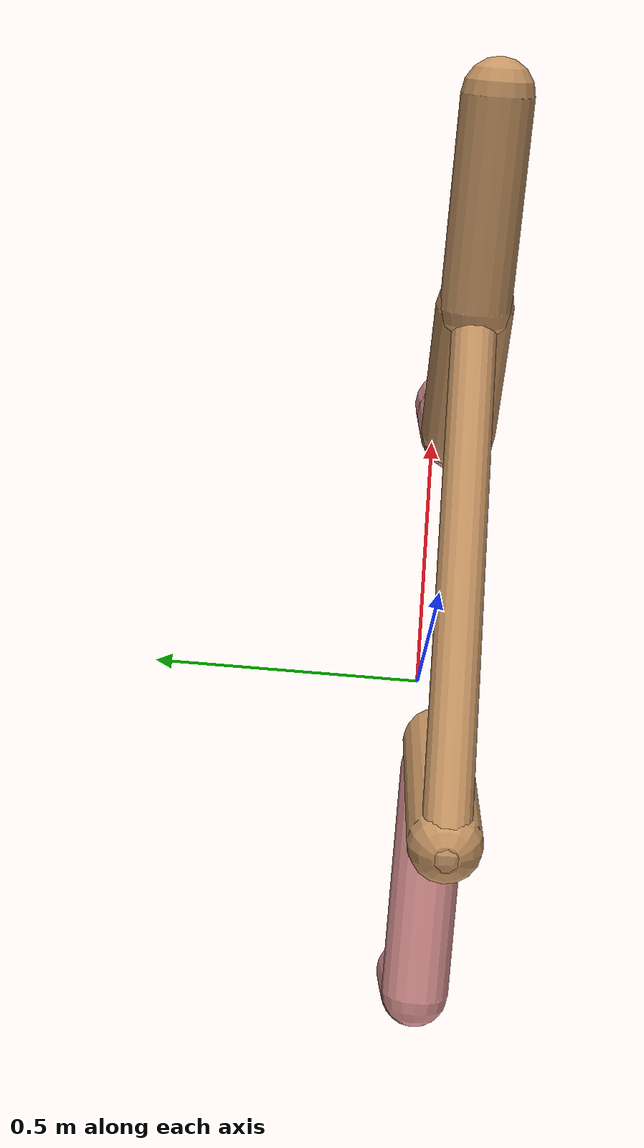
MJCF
<mujoco model="cheetah">
  <compiler angle="radian" coordinate="local" inertiafromgeom="true" settotalmass="14" />
  <default>
    <joint armature=".1" damping=".01" limited="true" solimplimit="0 .8 .03" solreflimit=".02 1" stiffness="8" />
    <geom conaffinity="0" condim="3" contype="1" friction="0.8 .1 .1" rgba="0.8 0.6 .4 1" solimp="0.0 0.8 0.01" solref="0.02 1" />
    <motor ctrllimited="true" ctrlrange="-1 1" />
  </default>
  <size nstack="300000" nuser_geom="1" />
  <option gravity="0 0 -9.81" timestep="0.01" />
  <worldbody>
    <body name="torso" pos="0.0 0.0 0.9064687366000509">
      <joint armature="0" axis="1 0 0" damping="0" limited="false" name="ignorex" pos="0 0 0" stiffness="0" type="slide" />
      <joint armature="0" axis="0 0 1" damping="0" limited="false" name="ignorez" pos="0 0 0" stiffness="0" type="slide" />
      <joint armature="0" axis="0 1 0" damping="0" limited="false" name="ignorey" pos="0 0 0" stiffness="0" type="hinge" />
      <geom fromto="-0.5 0.0 0.0 0.3055506408857629 0.0 0.0" name="torso" size="0.03305851417462829" type="capsule" />
      <geom axisangle="0 1 0 .87" name="head" pos="0.40555064088576287 0.0 0.1" size="0.05204322932873981 0.15" type="capsule" />

      <body name="bthigh" pos="-.5 0 0">
        <joint axis="0 1 0" damping="6" name="bthigh" pos="0 0 0" range="-.52 1.05" stiffness="240" type="hinge" />
        <geom axisangle="0 1 0 -3.8" name="bthigh" pos="0.11546906823745197 0.0 -0.15010978870868755" size="0.05039339350407023 0.1703711583110232" type="capsule" />
        <body name="bshin" pos="0.19093813647490393 0.0 -0.2902195774173751">
          <joint axis="0 1 0" damping="4.5" name="bshin" pos="0 0 0" range="-.785 .785" stiffness="180" type="hinge" />
          <geom axisangle="0 1 0 -2.03" name="bshin" pos="-0.16347515916607863 0.0 -0.08173757958303932" rgba="0.9 0.6 0.6 1" size="0.05039339350407023 0.17624602583898952" type="capsule" />
          <body name="bfoot" pos="-0.32695031833215726 0.0 -0.16347515916607863">
            <joint axis="0 1 0" damping="3" name="bfoot" pos="0 0 0" range="-.4 .785" stiffness="120" type="hinge" />
            <geom axisangle="0 1 0 -.27" name="bfoot" pos="0.034859741082336373 0.0 -0.11271316283288763" rgba="0.9 0.6 0.6 1" size="0.05039339350407023 0.11044750952576678" type="capsule" />
            <inertial mass="10" />
          </body>
        </body>
      </body>
      <body name="fthigh" pos="0.3055506408857629 0.0 0.0">
        <joint axis="0 1 0" damping="4.5" name="fthigh" pos="0 0 0" range="-1.5 0.8" stiffness="180" type="hinge" />
        <geom axisangle="0 1 0 .52" name="fthigh" pos="-0.059451036502971955 0.0 -0.10191606257652334" size="0.057158566802666164 0.11206415935296962" type="capsule" />
        <body name="fshin" pos="-0.11890207300594391 0.0 -0.2038321251530467">
          <joint axis="0 1 0" damping="3" name="fshin" pos="0 0 0" range="-1.2 1.1" stiffness="120" type="hinge" />
          <geom axisangle="0 1 0 -.6" name="fshin" pos="0.055230675825740844 0.0 -0.07647324345102578" rgba="0.9 0.6 0.6 1" size="0.057158566802666164 0.08931429241665247" type="capsule" />
          <body name="ffoot" pos="0.11046135165148169 0.0 -0.15294648690205156">
            <joint axis="0 1 0" damping="1.5" name="ffoot" pos="0 0 0" range="-3.1 -0.3" stiffness="60" type="hinge" />
            <geom axisangle="0 1 0 -.6" name="ffoot" pos="0.03904146591557295 0.0 -0.060731169202002375" rgba="0.9 0.6 0.6 1" size="0.057158566802666164 0.05898113650156296" type="capsule" />
            <inertial mass="10" />
          </body>
        </body>
      </body>
    </body>
  </worldbody>
  <actuator>
    <motor gear="120" joint="bthigh" name="bthigh" />
    <motor gear="90" joint="bshin" name="bshin" />
    <motor gear="60" joint="bfoot" name="bfoot" />
    <motor gear="120" joint="fthigh" name="fthigh" />
    <motor gear="60" joint="fshin" name="fshin" />
    <motor gear="30" joint="ffoot" name="ffoot" />
  </actuator>
</mujoco>
